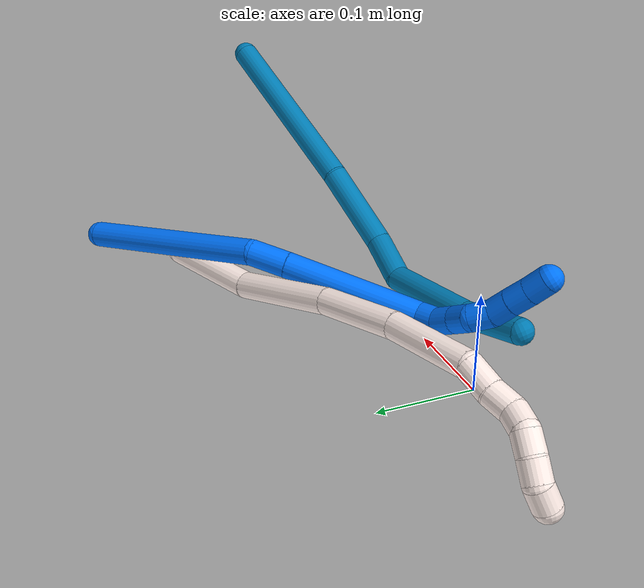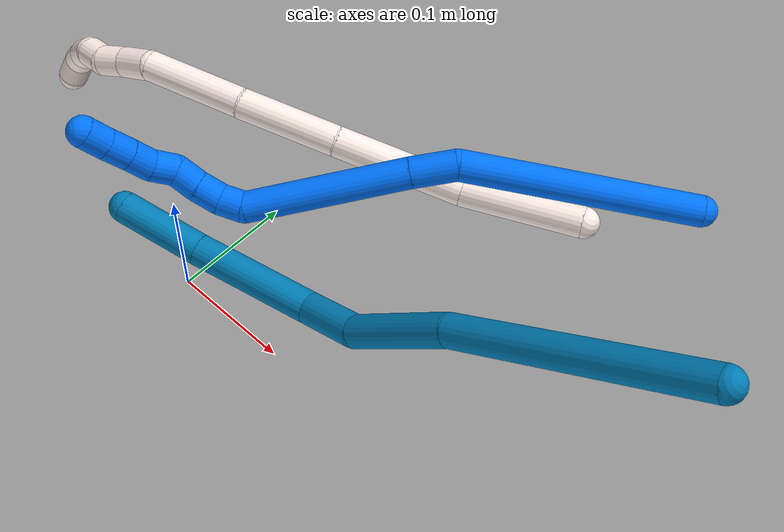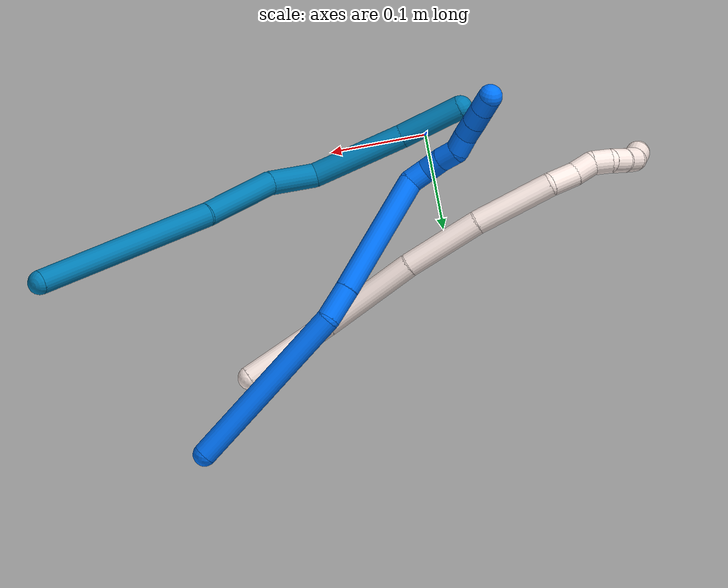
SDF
<sdf version="1.7">
 <world name="default">
  <model name="9">
   <static>0</static>
   <link name="9">
    <collision name="collision-cylinder-e_1_1_4">
     <pose>-0.0438 -0.008042 -0.087636 3.05008 -0.461812 -2.75688</pose>
     <geometry><cylinder><radius>0.0125</radius><length>0.196603</length></cylinder></geometry>
     <surface>
      <friction><ode><mu>1.16</mu><mu2>1.16</mu2><slip1>0</slip1><slip2>0</slip2></ode></friction>
      <contact><ode><kp>1e+06</kp><kd>1</kd><max_vel>0</max_vel><min_depth>0.001</min_depth></ode></contact>
     </surface>
    </collision>
    <visual name="visual-cylinder-e_1_1_4">
     <pose>-0.0438 -0.008042 -0.087636 3.05008 -0.461812 -2.75688</pose>
     <geometry><cylinder><radius>0.0125</radius><length>0.196603</length></cylinder></geometry>
     <material><ambient>0 0.490196 0.709804 1</ambient></material>
    </visual>
    <collision name="collision-cylinder-e_2_4_5">
     <pose>-0.099575 -0.020233 -0.216669 3.04171 -0.280245 -2.46047</pose>
     <geometry><cylinder><radius>0.0125</radius><length>0.086586</length></cylinder></geometry>
     <surface>
      <friction><ode><mu>1.16</mu><mu2>1.16</mu2><slip1>0</slip1><slip2>0</slip2></ode></friction>
      <contact><ode><kp>1e+06</kp><kd>1</kd><max_vel>0</max_vel><min_depth>0.001</min_depth></ode></contact>
     </surface>
    </collision>
    <visual name="visual-cylinder-e_2_4_5">
     <pose>-0.099575 -0.020233 -0.216669 3.04171 -0.280245 -2.46047</pose>
     <geometry><cylinder><radius>0.0125</radius><length>0.086586</length></cylinder></geometry>
     <material><ambient>0 0.490196 0.709804 1</ambient></material>
    </visual>
    <collision name="collision-cylinder-e_3_5_6">
     <pose>-0.125716 -0.022237 -0.278908 -3.03902 -0.594512 2.80954</pose>
     <geometry><cylinder><radius>0.0125</radius><length>0.050583</length></cylinder></geometry>
     <surface>
      <friction><ode><mu>1.16</mu><mu2>1.16</mu2><slip1>0</slip1><slip2>0</slip2></ode></friction>
      <contact><ode><kp>1e+06</kp><kd>1</kd><max_vel>0</max_vel><min_depth>0.001</min_depth></ode></contact>
     </surface>
    </collision>
    <visual name="visual-cylinder-e_3_5_6">
     <pose>-0.125716 -0.022237 -0.278908 -3.03902 -0.594512 2.80954</pose>
     <geometry><cylinder><radius>0.0125</radius><length>0.050583</length></cylinder></geometry>
     <material><ambient>0 0.490196 0.709804 1</ambient></material>
    </visual>
    <collision name="collision-cylinder-e_4_6_7">
     <pose>-0.178904 -0.032387 -0.327537 2.725 -0.909188 -2.32524</pose>
     <geometry><cylinder><radius>0.0125</radius><length>0.098917</length></cylinder></geometry>
     <surface>
      <friction><ode><mu>1.16</mu><mu2>1.16</mu2><slip1>0</slip1><slip2>0</slip2></ode></friction>
      <contact><ode><kp>1e+06</kp><kd>1</kd><max_vel>0</max_vel><min_depth>0.001</min_depth></ode></contact>
     </surface>
    </collision>
    <visual name="visual-cylinder-e_4_6_7">
     <pose>-0.178904 -0.032387 -0.327537 2.725 -0.909188 -2.32524</pose>
     <geometry><cylinder><radius>0.0125</radius><length>0.098917</length></cylinder></geometry>
     <material><ambient>0 0.490196 0.709804 1</ambient></material>
    </visual>
    <collision name="collision-cylinder-e_5_7_2">
     <pose>-0.246185 -0.055152 -0.370311 2.5318 -0.996592 -2.0928</pose>
     <geometry><cylinder><radius>0.0125</radius><length>0.067311</length></cylinder></geometry>
     <surface>
      <friction><ode><mu>1.16</mu><mu2>1.16</mu2><slip1>0</slip1><slip2>0</slip2></ode></friction>
      <contact><ode><kp>1e+06</kp><kd>1</kd><max_vel>0</max_vel><min_depth>0.001</min_depth></ode></contact>
     </surface>
    </collision>
    <visual name="visual-cylinder-e_5_7_2">
     <pose>-0.246185 -0.055152 -0.370311 2.5318 -0.996592 -2.0928</pose>
     <geometry><cylinder><radius>0.0125</radius><length>0.067311</length></cylinder></geometry>
     <material><ambient>0 0.490196 0.709804 1</ambient></material>
    </visual>
    <collision name="collision-sphere-2">
     <pose>-0.274443 -0.065621 -0.385296 0 -0 0</pose>
     <geometry><sphere><radius>0.0125</radius></sphere></geometry>
     <surface>
      <friction><ode><mu>1.16</mu><mu2>1.16</mu2><slip1>0</slip1><slip2>0</slip2></ode></friction>
      <contact><ode><kp>1e+06</kp><kd>1</kd><max_vel>0</max_vel><min_depth>0.001</min_depth></ode></contact>
     </surface>
    </collision>
    <visual name="visual-sphere-2">
     <pose>-0.274443 -0.065621 -0.385296 0 -0 0</pose>
     <geometry><sphere><radius>0.0125</radius></sphere></geometry>
     <material><ambient>0 0.490196 0.709804 1</ambient></material>
    </visual>
    <collision name="collision-sphere-7">
     <pose>-0.217927 -0.044683 -0.355325 0 -0 0</pose>
     <geometry><sphere><radius>0.0125</radius></sphere></geometry>
     <surface>
      <friction><ode><mu>1.16</mu><mu2>1.16</mu2><slip1>0</slip1><slip2>0</slip2></ode></friction>
      <contact><ode><kp>1e+06</kp><kd>1</kd><max_vel>0</max_vel><min_depth>0.001</min_depth></ode></contact>
     </surface>
    </collision>
    <visual name="visual-sphere-7">
     <pose>-0.217927 -0.044683 -0.355325 0 -0 0</pose>
     <geometry><sphere><radius>0.0125</radius></sphere></geometry>
     <material><ambient>0 0.490196 0.709804 1</ambient></material>
    </visual>
    <collision name="collision-sphere-6">
     <pose>-0.139882 -0.020091 -0.29975 0 -0 0</pose>
     <geometry><sphere><radius>0.0125</radius></sphere></geometry>
     <surface>
      <friction><ode><mu>1.16</mu><mu2>1.16</mu2><slip1>0</slip1><slip2>0</slip2></ode></friction>
      <contact><ode><kp>1e+06</kp><kd>1</kd><max_vel>0</max_vel><min_depth>0.001</min_depth></ode></contact>
     </surface>
    </collision>
    <visual name="visual-sphere-6">
     <pose>-0.139882 -0.020091 -0.29975 0 -0 0</pose>
     <geometry><sphere><radius>0.0125</radius></sphere></geometry>
     <material><ambient>0 0.490196 0.709804 1</ambient></material>
    </visual>
    <collision name="collision-sphere-5">
     <pose>-0.11155 -0.024382 -0.258066 0 -0 0</pose>
     <geometry><sphere><radius>0.0125</radius></sphere></geometry>
     <surface>
      <friction><ode><mu>1.16</mu><mu2>1.16</mu2><slip1>0</slip1><slip2>0</slip2></ode></friction>
      <contact><ode><kp>1e+06</kp><kd>1</kd><max_vel>0</max_vel><min_depth>0.001</min_depth></ode></contact>
     </surface>
    </collision>
    <visual name="visual-sphere-5">
     <pose>-0.11155 -0.024382 -0.258066 0 -0 0</pose>
     <geometry><sphere><radius>0.0125</radius></sphere></geometry>
     <material><ambient>0 0.490196 0.709804 1</ambient></material>
    </visual>
    <collision name="collision-sphere-1">
     <geometry><sphere><radius>0.0125</radius></sphere></geometry>
     <surface>
      <friction><ode><mu>1.16</mu><mu2>1.16</mu2><slip1>0</slip1><slip2>0</slip2></ode></friction>
      <contact><ode><kp>1e+06</kp><kd>1</kd><max_vel>0</max_vel><min_depth>0.001</min_depth></ode></contact>
     </surface>
    </collision>
    <visual name="visual-sphere-1">
     <geometry><sphere><radius>0.0125</radius></sphere></geometry>
     <material><ambient>0 0.490196 0.709804 1</ambient></material>
    </visual>
    <collision name="collision-sphere-4">
     <pose>-0.087601 -0.016085 -0.175272 0 -0 0</pose>
     <geometry><sphere><radius>0.0125</radius></sphere></geometry>
     <surface>
      <friction><ode><mu>1.16</mu><mu2>1.16</mu2><slip1>0</slip1><slip2>0</slip2></ode></friction>
      <contact><ode><kp>1e+06</kp><kd>1</kd><max_vel>0</max_vel><min_depth>0.001</min_depth></ode></contact>
     </surface>
    </collision>
    <visual name="visual-sphere-4">
     <pose>-0.087601 -0.016085 -0.175272 0 -0 0</pose>
     <geometry><sphere><radius>0.0125</radius></sphere></geometry>
     <material><ambient>0 0.490196 0.709804 1</ambient></material>
    </visual>
    <inertial>
     <pose>-0.115719 -0.022748 -0.214846 0 -0 0</pose>
     <mass>0.5</mass>
     <inertia>
      <ixx>-0.000947</ixx>
      <ixy>0</ixy>
      <ixz>0</ixz>
      <iyy>0.000452</iyy>
      <iyz>0</iyz>
      <izz>0.000455</izz>
     </inertia>
    </inertial>
   </link>
   <pose>0.408763 0.078311 0.217217 -0.308513 0.588698 -0.189717</pose>
  </model>
  <model name="11">
   <static>0</static>
   <link name="11">
    <collision name="collision-cylinder-e_1_1_4">
     <pose>-0.042547 -0.007505 -0.022044 2.81344 -1.07003 -2.59678</pose>
     <geometry><cylinder><radius>0.0125</radius><length>0.097006</length></cylinder></geometry>
     <surface>
      <friction><ode><mu>1.16</mu><mu2>1.16</mu2><slip1>0</slip1><slip2>0</slip2></ode></friction>
      <contact><ode><kp>1e+06</kp><kd>1</kd><max_vel>0</max_vel><min_depth>0.001</min_depth></ode></contact>
     </surface>
    </collision>
    <visual name="visual-cylinder-e_1_1_4">
     <pose>-0.042547 -0.007505 -0.022044 2.81344 -1.07003 -2.59678</pose>
     <geometry><cylinder><radius>0.0125</radius><length>0.097006</length></cylinder></geometry>
     <material><ambient>1 0.933333 0.909804 1</ambient></material>
    </visual>
    <collision name="collision-cylinder-e_2_4_5">
     <pose>-0.135112 -0.025595 -0.056653 2.44154 -1.25341 -2.20764</pose>
     <geometry><cylinder><radius>0.0125</radius><length>0.105293</length></cylinder></geometry>
     <surface>
      <friction><ode><mu>1.16</mu><mu2>1.16</mu2><slip1>0</slip1><slip2>0</slip2></ode></friction>
      <contact><ode><kp>1e+06</kp><kd>1</kd><max_vel>0</max_vel><min_depth>0.001</min_depth></ode></contact>
     </surface>
    </collision>
    <visual name="visual-cylinder-e_2_4_5">
     <pose>-0.135112 -0.025595 -0.056653 2.44154 -1.25341 -2.20764</pose>
     <geometry><cylinder><radius>0.0125</radius><length>0.105293</length></cylinder></geometry>
     <material><ambient>1 0.933333 0.909804 1</ambient></material>
    </visual>
    <collision name="collision-cylinder-e_3_5_6">
     <pose>-0.223695 -0.041386 -0.082226 2.76089 -1.22235 -2.60487</pose>
     <geometry><cylinder><radius>0.0125</radius><length>0.082065</length></cylinder></geometry>
     <surface>
      <friction><ode><mu>1.16</mu><mu2>1.16</mu2><slip1>0</slip1><slip2>0</slip2></ode></friction>
      <contact><ode><kp>1e+06</kp><kd>1</kd><max_vel>0</max_vel><min_depth>0.001</min_depth></ode></contact>
     </surface>
    </collision>
    <visual name="visual-cylinder-e_3_5_6">
     <pose>-0.223695 -0.041386 -0.082226 2.76089 -1.22235 -2.60487</pose>
     <geometry><cylinder><radius>0.0125</radius><length>0.082065</length></cylinder></geometry>
     <material><ambient>1 0.933333 0.909804 1</ambient></material>
    </visual>
    <collision name="collision-cylinder-e_4_6_7">
     <pose>-0.300935 -0.048347 -0.111699 3.0354 -1.16622 -2.98079</pose>
     <geometry><cylinder><radius>0.0125</radius><length>0.084139</length></cylinder></geometry>
     <surface>
      <friction><ode><mu>1.16</mu><mu2>1.16</mu2><slip1>0</slip1><slip2>0</slip2></ode></friction>
      <contact><ode><kp>1e+06</kp><kd>1</kd><max_vel>0</max_vel><min_depth>0.001</min_depth></ode></contact>
     </surface>
    </collision>
    <visual name="visual-cylinder-e_4_6_7">
     <pose>-0.300935 -0.048347 -0.111699 3.0354 -1.16622 -2.98079</pose>
     <geometry><cylinder><radius>0.0125</radius><length>0.084139</length></cylinder></geometry>
     <material><ambient>1 0.933333 0.909804 1</ambient></material>
    </visual>
    <collision name="collision-cylinder-e_5_7_8">
     <pose>-0.34977 -0.049232 -0.138414 -3.05686 -0.779417 2.93589</pose>
     <geometry><cylinder><radius>0.0125</radius><length>0.028918</length></cylinder></geometry>
     <surface>
      <friction><ode><mu>1.16</mu><mu2>1.16</mu2><slip1>0</slip1><slip2>0</slip2></ode></friction>
      <contact><ode><kp>1e+06</kp><kd>1</kd><max_vel>0</max_vel><min_depth>0.001</min_depth></ode></contact>
     </surface>
    </collision>
    <visual name="visual-cylinder-e_5_7_8">
     <pose>-0.34977 -0.049232 -0.138414 -3.05686 -0.779417 2.93589</pose>
     <geometry><cylinder><radius>0.0125</radius><length>0.028918</length></cylinder></geometry>
     <material><ambient>1 0.933333 0.909804 1</ambient></material>
    </visual>
    <collision name="collision-cylinder-e_6_8_9">
     <pose>-0.368292 -0.049397 -0.156151 3.00414 -0.835518 -2.8339</pose>
     <geometry><cylinder><radius>0.0125</radius><length>0.022542</length></cylinder></geometry>
     <surface>
      <friction><ode><mu>1.16</mu><mu2>1.16</mu2><slip1>0</slip1><slip2>0</slip2></ode></friction>
      <contact><ode><kp>1e+06</kp><kd>1</kd><max_vel>0</max_vel><min_depth>0.001</min_depth></ode></contact>
     </surface>
    </collision>
    <visual name="visual-cylinder-e_6_8_9">
     <pose>-0.368292 -0.049397 -0.156151 3.00414 -0.835518 -2.8339</pose>
     <geometry><cylinder><radius>0.0125</radius><length>0.022542</length></cylinder></geometry>
     <material><ambient>1 0.933333 0.909804 1</ambient></material>
    </visual>
    <collision name="collision-cylinder-e_7_9_10">
     <pose>-0.384158 -0.047202 -0.169414 -2.63127 -0.84838 2.09403</pose>
     <geometry><cylinder><radius>0.0125</radius><length>0.020012</length></cylinder></geometry>
     <surface>
      <friction><ode><mu>1.16</mu><mu2>1.16</mu2><slip1>0</slip1><slip2>0</slip2></ode></friction>
      <contact><ode><kp>1e+06</kp><kd>1</kd><max_vel>0</max_vel><min_depth>0.001</min_depth></ode></contact>
     </surface>
    </collision>
    <visual name="visual-cylinder-e_7_9_10">
     <pose>-0.384158 -0.047202 -0.169414 -2.63127 -0.84838 2.09403</pose>
     <geometry><cylinder><radius>0.0125</radius><length>0.020012</length></cylinder></geometry>
     <material><ambient>1 0.933333 0.909804 1</ambient></material>
    </visual>
    <collision name="collision-cylinder-e_8_10_11">
     <pose>-0.395017 -0.040683 -0.184025 -2.78559 -0.34159 1.52864</pose>
     <geometry><cylinder><radius>0.0125</radius><length>0.020016</length></cylinder></geometry>
     <surface>
      <friction><ode><mu>1.16</mu><mu2>1.16</mu2><slip1>0</slip1><slip2>0</slip2></ode></friction>
      <contact><ode><kp>1e+06</kp><kd>1</kd><max_vel>0</max_vel><min_depth>0.001</min_depth></ode></contact>
     </surface>
    </collision>
    <visual name="visual-cylinder-e_8_10_11">
     <pose>-0.395017 -0.040683 -0.184025 -2.78559 -0.34159 1.52864</pose>
     <geometry><cylinder><radius>0.0125</radius><length>0.020016</length></cylinder></geometry>
     <material><ambient>1 0.933333 0.909804 1</ambient></material>
    </visual>
    <collision name="collision-cylinder-e_9_11_12">
     <pose>-0.400189 -0.034931 -0.202387 -2.88821 -0.182868 1.24785</pose>
     <geometry><cylinder><radius>0.0125</radius><length>0.020007</length></cylinder></geometry>
     <surface>
      <friction><ode><mu>1.16</mu><mu2>1.16</mu2><slip1>0</slip1><slip2>0</slip2></ode></friction>
      <contact><ode><kp>1e+06</kp><kd>1</kd><max_vel>0</max_vel><min_depth>0.001</min_depth></ode></contact>
     </surface>
    </collision>
    <visual name="visual-cylinder-e_9_11_12">
     <pose>-0.400189 -0.034931 -0.202387 -2.88821 -0.182868 1.24785</pose>
     <geometry><cylinder><radius>0.0125</radius><length>0.020007</length></cylinder></geometry>
     <material><ambient>1 0.933333 0.909804 1</ambient></material>
    </visual>
    <collision name="collision-cylinder-e_10_12_2">
     <pose>-0.401362 -0.034086 -0.221757 2.97842 0.064642 0.753085</pose>
     <geometry><cylinder><radius>0.0125</radius><length>0.020003</length></cylinder></geometry>
     <surface>
      <friction><ode><mu>1.16</mu><mu2>1.16</mu2><slip1>0</slip1><slip2>0</slip2></ode></friction>
      <contact><ode><kp>1e+06</kp><kd>1</kd><max_vel>0</max_vel><min_depth>0.001</min_depth></ode></contact>
     </surface>
    </collision>
    <visual name="visual-cylinder-e_10_12_2">
     <pose>-0.401362 -0.034086 -0.221757 2.97842 0.064642 0.753085</pose>
     <geometry><cylinder><radius>0.0125</radius><length>0.020003</length></cylinder></geometry>
     <material><ambient>1 0.933333 0.909804 1</ambient></material>
    </visual>
    <collision name="collision-sphere-2">
     <pose>-0.400716 -0.035708 -0.231605 0 -0 0</pose>
     <geometry><sphere><radius>0.0125</radius></sphere></geometry>
     <surface>
      <friction><ode><mu>1.16</mu><mu2>1.16</mu2><slip1>0</slip1><slip2>0</slip2></ode></friction>
      <contact><ode><kp>1e+06</kp><kd>1</kd><max_vel>0</max_vel><min_depth>0.001</min_depth></ode></contact>
     </surface>
    </collision>
    <visual name="visual-sphere-2">
     <pose>-0.400716 -0.035708 -0.231605 0 -0 0</pose>
     <geometry><sphere><radius>0.0125</radius></sphere></geometry>
     <material><ambient>1 0.933333 0.909804 1</ambient></material>
    </visual>
    <collision name="collision-sphere-12">
     <pose>-0.402008 -0.032465 -0.211909 0 -0 0</pose>
     <geometry><sphere><radius>0.0125</radius></sphere></geometry>
     <surface>
      <friction><ode><mu>1.16</mu><mu2>1.16</mu2><slip1>0</slip1><slip2>0</slip2></ode></friction>
      <contact><ode><kp>1e+06</kp><kd>1</kd><max_vel>0</max_vel><min_depth>0.001</min_depth></ode></contact>
     </surface>
    </collision>
    <visual name="visual-sphere-12">
     <pose>-0.402008 -0.032465 -0.211909 0 -0 0</pose>
     <geometry><sphere><radius>0.0125</radius></sphere></geometry>
     <material><ambient>1 0.933333 0.909804 1</ambient></material>
    </visual>
    <collision name="collision-sphere-11">
     <pose>-0.39837 -0.037397 -0.192864 0 -0 0</pose>
     <geometry><sphere><radius>0.0125</radius></sphere></geometry>
     <surface>
      <friction><ode><mu>1.16</mu><mu2>1.16</mu2><slip1>0</slip1><slip2>0</slip2></ode></friction>
      <contact><ode><kp>1e+06</kp><kd>1</kd><max_vel>0</max_vel><min_depth>0.001</min_depth></ode></contact>
     </surface>
    </collision>
    <visual name="visual-sphere-11">
     <pose>-0.39837 -0.037397 -0.192864 0 -0 0</pose>
     <geometry><sphere><radius>0.0125</radius></sphere></geometry>
     <material><ambient>1 0.933333 0.909804 1</ambient></material>
    </visual>
    <collision name="collision-sphere-10">
     <pose>-0.391665 -0.04397 -0.175187 0 -0 0</pose>
     <geometry><sphere><radius>0.0125</radius></sphere></geometry>
     <surface>
      <friction><ode><mu>1.16</mu><mu2>1.16</mu2><slip1>0</slip1><slip2>0</slip2></ode></friction>
      <contact><ode><kp>1e+06</kp><kd>1</kd><max_vel>0</max_vel><min_depth>0.001</min_depth></ode></contact>
     </surface>
    </collision>
    <visual name="visual-sphere-10">
     <pose>-0.391665 -0.04397 -0.175187 0 -0 0</pose>
     <geometry><sphere><radius>0.0125</radius></sphere></geometry>
     <material><ambient>1 0.933333 0.909804 1</ambient></material>
    </visual>
    <collision name="collision-sphere-9">
     <pose>-0.376651 -0.050433 -0.163641 0 -0 0</pose>
     <geometry><sphere><radius>0.0125</radius></sphere></geometry>
     <surface>
      <friction><ode><mu>1.16</mu><mu2>1.16</mu2><slip1>0</slip1><slip2>0</slip2></ode></friction>
      <contact><ode><kp>1e+06</kp><kd>1</kd><max_vel>0</max_vel><min_depth>0.001</min_depth></ode></contact>
     </surface>
    </collision>
    <visual name="visual-sphere-9">
     <pose>-0.376651 -0.050433 -0.163641 0 -0 0</pose>
     <geometry><sphere><radius>0.0125</radius></sphere></geometry>
     <material><ambient>1 0.933333 0.909804 1</ambient></material>
    </visual>
    <collision name="collision-sphere-4">
     <pose>-0.085095 -0.01501 -0.044087 0 -0 0</pose>
     <geometry><sphere><radius>0.0125</radius></sphere></geometry>
     <surface>
      <friction><ode><mu>1.16</mu><mu2>1.16</mu2><slip1>0</slip1><slip2>0</slip2></ode></friction>
      <contact><ode><kp>1e+06</kp><kd>1</kd><max_vel>0</max_vel><min_depth>0.001</min_depth></ode></contact>
     </surface>
    </collision>
    <visual name="visual-sphere-4">
     <pose>-0.085095 -0.01501 -0.044087 0 -0 0</pose>
     <geometry><sphere><radius>0.0125</radius></sphere></geometry>
     <material><ambient>1 0.933333 0.909804 1</ambient></material>
    </visual>
    <collision name="collision-sphere-1">
     <geometry><sphere><radius>0.0125</radius></sphere></geometry>
     <surface>
      <friction><ode><mu>1.16</mu><mu2>1.16</mu2><slip1>0</slip1><slip2>0</slip2></ode></friction>
      <contact><ode><kp>1e+06</kp><kd>1</kd><max_vel>0</max_vel><min_depth>0.001</min_depth></ode></contact>
     </surface>
    </collision>
    <visual name="visual-sphere-1">
     <geometry><sphere><radius>0.0125</radius></sphere></geometry>
     <material><ambient>1 0.933333 0.909804 1</ambient></material>
    </visual>
    <collision name="collision-sphere-8">
     <pose>-0.359933 -0.048361 -0.148662 0 -0 0</pose>
     <geometry><sphere><radius>0.0125</radius></sphere></geometry>
     <surface>
      <friction><ode><mu>1.16</mu><mu2>1.16</mu2><slip1>0</slip1><slip2>0</slip2></ode></friction>
      <contact><ode><kp>1e+06</kp><kd>1</kd><max_vel>0</max_vel><min_depth>0.001</min_depth></ode></contact>
     </surface>
    </collision>
    <visual name="visual-sphere-8">
     <pose>-0.359933 -0.048361 -0.148662 0 -0 0</pose>
     <geometry><sphere><radius>0.0125</radius></sphere></geometry>
     <material><ambient>1 0.933333 0.909804 1</ambient></material>
    </visual>
    <collision name="collision-sphere-5">
     <pose>-0.185129 -0.03618 -0.069219 0 -0 0</pose>
     <geometry><sphere><radius>0.0125</radius></sphere></geometry>
     <surface>
      <friction><ode><mu>1.16</mu><mu2>1.16</mu2><slip1>0</slip1><slip2>0</slip2></ode></friction>
      <contact><ode><kp>1e+06</kp><kd>1</kd><max_vel>0</max_vel><min_depth>0.001</min_depth></ode></contact>
     </surface>
    </collision>
    <visual name="visual-sphere-5">
     <pose>-0.185129 -0.03618 -0.069219 0 -0 0</pose>
     <geometry><sphere><radius>0.0125</radius></sphere></geometry>
     <material><ambient>1 0.933333 0.909804 1</ambient></material>
    </visual>
    <collision name="collision-sphere-6">
     <pose>-0.262262 -0.046592 -0.095233 0 -0 0</pose>
     <geometry><sphere><radius>0.0125</radius></sphere></geometry>
     <surface>
      <friction><ode><mu>1.16</mu><mu2>1.16</mu2><slip1>0</slip1><slip2>0</slip2></ode></friction>
      <contact><ode><kp>1e+06</kp><kd>1</kd><max_vel>0</max_vel><min_depth>0.001</min_depth></ode></contact>
     </surface>
    </collision>
    <visual name="visual-sphere-6">
     <pose>-0.262262 -0.046592 -0.095233 0 -0 0</pose>
     <geometry><sphere><radius>0.0125</radius></sphere></geometry>
     <material><ambient>1 0.933333 0.909804 1</ambient></material>
    </visual>
    <collision name="collision-sphere-7">
     <pose>-0.339607 -0.050102 -0.128166 0 -0 0</pose>
     <geometry><sphere><radius>0.0125</radius></sphere></geometry>
     <surface>
      <friction><ode><mu>1.16</mu><mu2>1.16</mu2><slip1>0</slip1><slip2>0</slip2></ode></friction>
      <contact><ode><kp>1e+06</kp><kd>1</kd><max_vel>0</max_vel><min_depth>0.001</min_depth></ode></contact>
     </surface>
    </collision>
    <visual name="visual-sphere-7">
     <pose>-0.339607 -0.050102 -0.128166 0 -0 0</pose>
     <geometry><sphere><radius>0.0125</radius></sphere></geometry>
     <material><ambient>1 0.933333 0.909804 1</ambient></material>
    </visual>
    <inertial>
     <pose>-0.224155 -0.033128 -0.094662 0 -0 0</pose>
     <mass>0.5</mass>
     <inertia>
      <ixx>-0.000173</ixx>
      <ixy>0</ixy>
      <ixz>0</ixz>
      <iyy>0.000223</iyy>
      <iyz>0</iyz>
      <izz>0.000289</izz>
     </inertia>
    </inertial>
   </link>
   <pose>0.225704 0.213226 0.079129 -0.087401 0.44095 0.21475</pose>
  </model>
  <model name="14">
   <static>0</static>
   <link name="14">
    <collision name="collision-cylinder-e_1_1_4">
     <pose>-0.037129 -0.047945 -0.073278 2.56221 -0.401019 -1.19686</pose>
     <geometry><cylinder><radius>0.0125</radius><length>0.190232</length></cylinder></geometry>
     <surface>
      <friction><ode><mu>1.16</mu><mu2>1.16</mu2><slip1>0</slip1><slip2>0</slip2></ode></friction>
      <contact><ode><kp>1e+06</kp><kd>1</kd><max_vel>0</max_vel><min_depth>0.001</min_depth></ode></contact>
     </surface>
    </collision>
    <visual name="visual-cylinder-e_1_1_4">
     <pose>-0.037129 -0.047945 -0.073278 2.56221 -0.401019 -1.19686</pose>
     <geometry><cylinder><radius>0.0125</radius><length>0.190232</length></cylinder></geometry>
     <material><ambient>0 0.462745 1 1</ambient></material>
    </visual>
    <collision name="collision-cylinder-e_2_4_5">
     <pose>-0.086729 -0.101442 -0.158587 2.7093 -0.75512 -2.13029</pose>
     <geometry><cylinder><radius>0.0125</radius><length>0.036391</length></cylinder></geometry>
     <surface>
      <friction><ode><mu>1.16</mu><mu2>1.16</mu2><slip1>0</slip1><slip2>0</slip2></ode></friction>
      <contact><ode><kp>1e+06</kp><kd>1</kd><max_vel>0</max_vel><min_depth>0.001</min_depth></ode></contact>
     </surface>
    </collision>
    <visual name="visual-cylinder-e_2_4_5">
     <pose>-0.086729 -0.101442 -0.158587 2.7093 -0.75512 -2.13029</pose>
     <geometry><cylinder><radius>0.0125</radius><length>0.036391</length></cylinder></geometry>
     <material><ambient>0 0.462745 1 1</ambient></material>
    </visual>
    <collision name="collision-cylinder-e_3_5_6">
     <pose>-0.146172 -0.125028 -0.212777 2.73735 -0.79744 -2.23615</pose>
     <geometry><cylinder><radius>0.0125</radius><length>0.131287</length></cylinder></geometry>
     <surface>
      <friction><ode><mu>1.16</mu><mu2>1.16</mu2><slip1>0</slip1><slip2>0</slip2></ode></friction>
      <contact><ode><kp>1e+06</kp><kd>1</kd><max_vel>0</max_vel><min_depth>0.001</min_depth></ode></contact>
     </surface>
    </collision>
    <visual name="visual-cylinder-e_3_5_6">
     <pose>-0.146172 -0.125028 -0.212777 2.73735 -0.79744 -2.23615</pose>
     <geometry><cylinder><radius>0.0125</radius><length>0.131287</length></cylinder></geometry>
     <material><ambient>0 0.462745 1 1</ambient></material>
    </visual>
    <collision name="collision-cylinder-e_4_6_7">
     <pose>-0.197154 -0.149875 -0.261203 2.31461 -0.408803 -0.882693</pose>
     <geometry><cylinder><radius>0.0125</radius><length>0.020175</length></cylinder></geometry>
     <surface>
      <friction><ode><mu>1.16</mu><mu2>1.16</mu2><slip1>0</slip1><slip2>0</slip2></ode></friction>
      <contact><ode><kp>1e+06</kp><kd>1</kd><max_vel>0</max_vel><min_depth>0.001</min_depth></ode></contact>
     </surface>
    </collision>
    <visual name="visual-cylinder-e_4_6_7">
     <pose>-0.197154 -0.149875 -0.261203 2.31461 -0.408803 -0.882693</pose>
     <geometry><cylinder><radius>0.0125</radius><length>0.020175</length></cylinder></geometry>
     <material><ambient>0 0.462745 1 1</ambient></material>
    </visual>
    <collision name="collision-cylinder-e_5_7_8">
     <pose>-0.201712 -0.163415 -0.275397 2.43785 -0.052608 -0.143074</pose>
     <geometry><cylinder><radius>0.0125</radius><length>0.020823</length></cylinder></geometry>
     <surface>
      <friction><ode><mu>1.16</mu><mu2>1.16</mu2><slip1>0</slip1><slip2>0</slip2></ode></friction>
      <contact><ode><kp>1e+06</kp><kd>1</kd><max_vel>0</max_vel><min_depth>0.001</min_depth></ode></contact>
     </surface>
    </collision>
    <visual name="visual-cylinder-e_5_7_8">
     <pose>-0.201712 -0.163415 -0.275397 2.43785 -0.052608 -0.143074</pose>
     <geometry><cylinder><radius>0.0125</radius><length>0.020823</length></cylinder></geometry>
     <material><ambient>0 0.462745 1 1</ambient></material>
    </visual>
    <collision name="collision-cylinder-e_6_8_9">
     <pose>-0.202055 -0.177344 -0.29038 2.34596 0.020267 0.048222</pose>
     <geometry><cylinder><radius>0.0125</radius><length>0.020167</length></cylinder></geometry>
     <surface>
      <friction><ode><mu>1.16</mu><mu2>1.16</mu2><slip1>0</slip1><slip2>0</slip2></ode></friction>
      <contact><ode><kp>1e+06</kp><kd>1</kd><max_vel>0</max_vel><min_depth>0.001</min_depth></ode></contact>
     </surface>
    </collision>
    <visual name="visual-cylinder-e_6_8_9">
     <pose>-0.202055 -0.177344 -0.29038 2.34596 0.020267 0.048222</pose>
     <geometry><cylinder><radius>0.0125</radius><length>0.020167</length></cylinder></geometry>
     <material><ambient>0 0.462745 1 1</ambient></material>
    </visual>
    <collision name="collision-cylinder-e_7_9_10">
     <pose>-0.203506 -0.187612 -0.307 2.83133 -0.163301 -0.964167</pose>
     <geometry><cylinder><radius>0.0125</radius><length>0.02036</length></cylinder></geometry>
     <surface>
      <friction><ode><mu>1.16</mu><mu2>1.16</mu2><slip1>0</slip1><slip2>0</slip2></ode></friction>
      <contact><ode><kp>1e+06</kp><kd>1</kd><max_vel>0</max_vel><min_depth>0.001</min_depth></ode></contact>
     </surface>
    </collision>
    <visual name="visual-cylinder-e_7_9_10">
     <pose>-0.203506 -0.187612 -0.307 2.83133 -0.163301 -0.964167</pose>
     <geometry><cylinder><radius>0.0125</radius><length>0.02036</length></cylinder></geometry>
     <material><ambient>0 0.462745 1 1</ambient></material>
    </visual>
    <collision name="collision-cylinder-e_8_10_11">
     <pose>-0.203389 -0.194022 -0.325982 2.80043 0.175494 0.944351</pose>
     <geometry><cylinder><radius>0.0125</radius><length>0.020298</length></cylinder></geometry>
     <surface>
      <friction><ode><mu>1.16</mu><mu2>1.16</mu2><slip1>0</slip1><slip2>0</slip2></ode></friction>
      <contact><ode><kp>1e+06</kp><kd>1</kd><max_vel>0</max_vel><min_depth>0.001</min_depth></ode></contact>
     </surface>
    </collision>
    <visual name="visual-cylinder-e_8_10_11">
     <pose>-0.203389 -0.194022 -0.325982 2.80043 0.175494 0.944351</pose>
     <geometry><cylinder><radius>0.0125</radius><length>0.020298</length></cylinder></geometry>
     <material><ambient>0 0.462745 1 1</ambient></material>
    </visual>
    <collision name="collision-cylinder-e_9_11_12">
     <pose>-0.200109 -0.200544 -0.344866 2.81773 0.149816 0.861289</pose>
     <geometry><cylinder><radius>0.0125</radius><length>0.020198</length></cylinder></geometry>
     <surface>
      <friction><ode><mu>1.16</mu><mu2>1.16</mu2><slip1>0</slip1><slip2>0</slip2></ode></friction>
      <contact><ode><kp>1e+06</kp><kd>1</kd><max_vel>0</max_vel><min_depth>0.001</min_depth></ode></contact>
     </surface>
    </collision>
    <visual name="visual-cylinder-e_9_11_12">
     <pose>-0.200109 -0.200544 -0.344866 2.81773 0.149816 0.861289</pose>
     <geometry><cylinder><radius>0.0125</radius><length>0.020198</length></cylinder></geometry>
     <material><ambient>0 0.462745 1 1</ambient></material>
    </visual>
    <collision name="collision-cylinder-e_10_12_2">
     <pose>-0.196642 -0.206873 -0.363656 2.8156 0.196557 1.08016</pose>
     <geometry><cylinder><radius>0.0125</radius><length>0.020069</length></cylinder></geometry>
     <surface>
      <friction><ode><mu>1.16</mu><mu2>1.16</mu2><slip1>0</slip1><slip2>0</slip2></ode></friction>
      <contact><ode><kp>1e+06</kp><kd>1</kd><max_vel>0</max_vel><min_depth>0.001</min_depth></ode></contact>
     </surface>
    </collision>
    <visual name="visual-cylinder-e_10_12_2">
     <pose>-0.196642 -0.206873 -0.363656 2.8156 0.196557 1.08016</pose>
     <geometry><cylinder><radius>0.0125</radius><length>0.020069</length></cylinder></geometry>
     <material><ambient>0 0.462745 1 1</ambient></material>
    </visual>
    <collision name="collision-sphere-2">
     <pose>-0.194682 -0.210025 -0.372979 0 -0 0</pose>
     <geometry><sphere><radius>0.0125</radius></sphere></geometry>
     <surface>
      <friction><ode><mu>1.16</mu><mu2>1.16</mu2><slip1>0</slip1><slip2>0</slip2></ode></friction>
      <contact><ode><kp>1e+06</kp><kd>1</kd><max_vel>0</max_vel><min_depth>0.001</min_depth></ode></contact>
     </surface>
    </collision>
    <visual name="visual-sphere-2">
     <pose>-0.194682 -0.210025 -0.372979 0 -0 0</pose>
     <geometry><sphere><radius>0.0125</radius></sphere></geometry>
     <material><ambient>0 0.462745 1 1</ambient></material>
    </visual>
    <collision name="collision-sphere-12">
     <pose>-0.198602 -0.203721 -0.354333 0 -0 0</pose>
     <geometry><sphere><radius>0.0125</radius></sphere></geometry>
     <surface>
      <friction><ode><mu>1.16</mu><mu2>1.16</mu2><slip1>0</slip1><slip2>0</slip2></ode></friction>
      <contact><ode><kp>1e+06</kp><kd>1</kd><max_vel>0</max_vel><min_depth>0.001</min_depth></ode></contact>
     </surface>
    </collision>
    <visual name="visual-sphere-12">
     <pose>-0.198602 -0.203721 -0.354333 0 -0 0</pose>
     <geometry><sphere><radius>0.0125</radius></sphere></geometry>
     <material><ambient>0 0.462745 1 1</ambient></material>
    </visual>
    <collision name="collision-sphere-11">
     <pose>-0.201617 -0.197366 -0.335399 0 -0 0</pose>
     <geometry><sphere><radius>0.0125</radius></sphere></geometry>
     <surface>
      <friction><ode><mu>1.16</mu><mu2>1.16</mu2><slip1>0</slip1><slip2>0</slip2></ode></friction>
      <contact><ode><kp>1e+06</kp><kd>1</kd><max_vel>0</max_vel><min_depth>0.001</min_depth></ode></contact>
     </surface>
    </collision>
    <visual name="visual-sphere-11">
     <pose>-0.201617 -0.197366 -0.335399 0 -0 0</pose>
     <geometry><sphere><radius>0.0125</radius></sphere></geometry>
     <material><ambient>0 0.462745 1 1</ambient></material>
    </visual>
    <collision name="collision-sphere-10">
     <pose>-0.205161 -0.190679 -0.316565 0 -0 0</pose>
     <geometry><sphere><radius>0.0125</radius></sphere></geometry>
     <surface>
      <friction><ode><mu>1.16</mu><mu2>1.16</mu2><slip1>0</slip1><slip2>0</slip2></ode></friction>
      <contact><ode><kp>1e+06</kp><kd>1</kd><max_vel>0</max_vel><min_depth>0.001</min_depth></ode></contact>
     </surface>
    </collision>
    <visual name="visual-sphere-10">
     <pose>-0.205161 -0.190679 -0.316565 0 -0 0</pose>
     <geometry><sphere><radius>0.0125</radius></sphere></geometry>
     <material><ambient>0 0.462745 1 1</ambient></material>
    </visual>
    <collision name="collision-sphere-9">
     <pose>-0.201851 -0.184545 -0.297435 0 -0 0</pose>
     <geometry><sphere><radius>0.0125</radius></sphere></geometry>
     <surface>
      <friction><ode><mu>1.16</mu><mu2>1.16</mu2><slip1>0</slip1><slip2>0</slip2></ode></friction>
      <contact><ode><kp>1e+06</kp><kd>1</kd><max_vel>0</max_vel><min_depth>0.001</min_depth></ode></contact>
     </surface>
    </collision>
    <visual name="visual-sphere-9">
     <pose>-0.201851 -0.184545 -0.297435 0 -0 0</pose>
     <geometry><sphere><radius>0.0125</radius></sphere></geometry>
     <material><ambient>0 0.462745 1 1</ambient></material>
    </visual>
    <collision name="collision-sphere-4">
     <pose>-0.074258 -0.095891 -0.146557 0 -0 0</pose>
     <geometry><sphere><radius>0.0125</radius></sphere></geometry>
     <surface>
      <friction><ode><mu>1.16</mu><mu2>1.16</mu2><slip1>0</slip1><slip2>0</slip2></ode></friction>
      <contact><ode><kp>1e+06</kp><kd>1</kd><max_vel>0</max_vel><min_depth>0.001</min_depth></ode></contact>
     </surface>
    </collision>
    <visual name="visual-sphere-4">
     <pose>-0.074258 -0.095891 -0.146557 0 -0 0</pose>
     <geometry><sphere><radius>0.0125</radius></sphere></geometry>
     <material><ambient>0 0.462745 1 1</ambient></material>
    </visual>
    <collision name="collision-sphere-1">
     <geometry><sphere><radius>0.0125</radius></sphere></geometry>
     <surface>
      <friction><ode><mu>1.16</mu><mu2>1.16</mu2><slip1>0</slip1><slip2>0</slip2></ode></friction>
      <contact><ode><kp>1e+06</kp><kd>1</kd><max_vel>0</max_vel><min_depth>0.001</min_depth></ode></contact>
     </surface>
    </collision>
    <visual name="visual-sphere-1">
     <geometry><sphere><radius>0.0125</radius></sphere></geometry>
     <material><ambient>0 0.462745 1 1</ambient></material>
    </visual>
    <collision name="collision-sphere-8">
     <pose>-0.202259 -0.170142 -0.283324 0 -0 0</pose>
     <geometry><sphere><radius>0.0125</radius></sphere></geometry>
     <surface>
      <friction><ode><mu>1.16</mu><mu2>1.16</mu2><slip1>0</slip1><slip2>0</slip2></ode></friction>
      <contact><ode><kp>1e+06</kp><kd>1</kd><max_vel>0</max_vel><min_depth>0.001</min_depth></ode></contact>
     </surface>
    </collision>
    <visual name="visual-sphere-8">
     <pose>-0.202259 -0.170142 -0.283324 0 -0 0</pose>
     <geometry><sphere><radius>0.0125</radius></sphere></geometry>
     <material><ambient>0 0.462745 1 1</ambient></material>
    </visual>
    <collision name="collision-sphere-5">
     <pose>-0.0992 -0.106993 -0.170618 0 -0 0</pose>
     <geometry><sphere><radius>0.0125</radius></sphere></geometry>
     <surface>
      <friction><ode><mu>1.16</mu><mu2>1.16</mu2><slip1>0</slip1><slip2>0</slip2></ode></friction>
      <contact><ode><kp>1e+06</kp><kd>1</kd><max_vel>0</max_vel><min_depth>0.001</min_depth></ode></contact>
     </surface>
    </collision>
    <visual name="visual-sphere-5">
     <pose>-0.0992 -0.106993 -0.170618 0 -0 0</pose>
     <geometry><sphere><radius>0.0125</radius></sphere></geometry>
     <material><ambient>0 0.462745 1 1</ambient></material>
    </visual>
    <collision name="collision-sphere-6">
     <pose>-0.193145 -0.143064 -0.254936 0 -0 0</pose>
     <geometry><sphere><radius>0.0125</radius></sphere></geometry>
     <surface>
      <friction><ode><mu>1.16</mu><mu2>1.16</mu2><slip1>0</slip1><slip2>0</slip2></ode></friction>
      <contact><ode><kp>1e+06</kp><kd>1</kd><max_vel>0</max_vel><min_depth>0.001</min_depth></ode></contact>
     </surface>
    </collision>
    <visual name="visual-sphere-6">
     <pose>-0.193145 -0.143064 -0.254936 0 -0 0</pose>
     <geometry><sphere><radius>0.0125</radius></sphere></geometry>
     <material><ambient>0 0.462745 1 1</ambient></material>
    </visual>
    <collision name="collision-sphere-7">
     <pose>-0.201164 -0.156687 -0.26747 0 -0 0</pose>
     <geometry><sphere><radius>0.0125</radius></sphere></geometry>
     <surface>
      <friction><ode><mu>1.16</mu><mu2>1.16</mu2><slip1>0</slip1><slip2>0</slip2></ode></friction>
      <contact><ode><kp>1e+06</kp><kd>1</kd><max_vel>0</max_vel><min_depth>0.001</min_depth></ode></contact>
     </surface>
    </collision>
    <visual name="visual-sphere-7">
     <pose>-0.201164 -0.156687 -0.26747 0 -0 0</pose>
     <geometry><sphere><radius>0.0125</radius></sphere></geometry>
     <material><ambient>0 0.462745 1 1</ambient></material>
    </visual>
    <inertial>
     <pose>-0.115845 -0.110381 -0.183275 0 -0 0</pose>
     <mass>0.5</mass>
     <inertia>
      <ixx>-0.000505</ixx>
      <ixy>0</ixy>
      <ixz>0</ixz>
      <iyy>-0.000534</iyy>
      <iyz>0</iyz>
      <izz>0.000693</izz>
     </inertia>
    </inertial>
   </link>
   <pose>0.285645 0.281507 0.082534 -2.92707 -0.984123 0.981368</pose>
  </model>
 </world>
</sdf>
